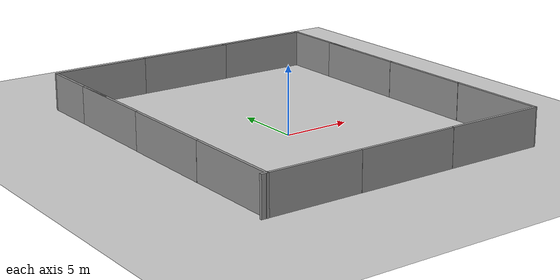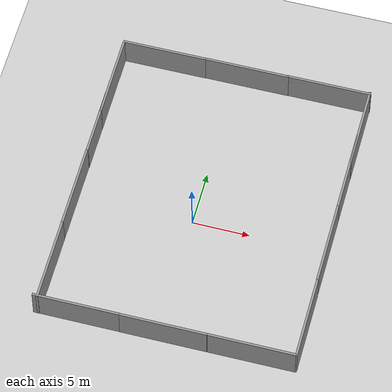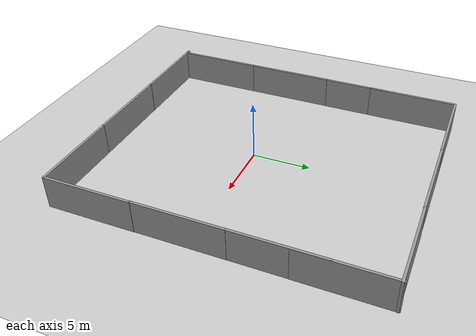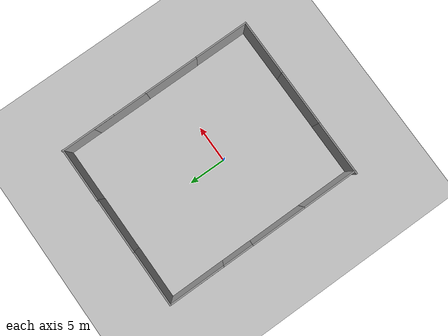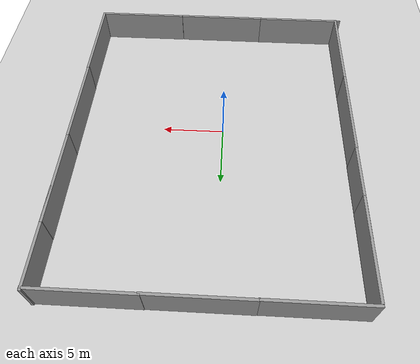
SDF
<sdf version="1.6">
 <world name="default">
  <light name="sun" type="directional">
   <pose>0 0 10 0 -0 0</pose>
   <diffuse>0.8 0.8 0.8 1</diffuse>
   <specular>0.1 0.1 0.1 1</specular>
   <attenuation>
    <range>1000</range>
    <constant>0.9</constant>
    <linear>0.01</linear>
    <quadratic>0.001</quadratic>
   </attenuation>
   <direction>-0.5 0.5 -1</direction>
  </light>
  <model name="ground_plane">
   <static>1</static>
   <link name="link">
    <collision name="collision">
     <geometry><plane><normal>0 0 1</normal><size>100 100</size></plane></geometry>
     <surface><friction><ode><mu>100</mu><mu2>50</mu2></ode></friction></surface>
    </collision>
    <visual name="visual">
     <cast_shadows>0</cast_shadows>
     <geometry><plane><normal>0 0 1</normal><size>100 100</size></plane></geometry>
     <material>
      <script><uri>file://media/materials/scripts/gazebo.material</uri><name>Gazebo/Grey</name></script>
     </material>
    </visual>
   </link>
  </model>
  <physics name="default_physics" default="0" type="ode">
   <max_step_size>0.01</max_step_size>
   <real_time_factor>1</real_time_factor>
   <real_time_update_rate>100</real_time_update_rate>
  </physics>
  <gravity>0 0 -9.8</gravity>
  <magnetic_field>6e-06 2.3e-05 -4.2e-05</magnetic_field>
  <atmosphere type="adiabatic"/>
  <scene><ambient>0.4 0.4 0.4 1</ambient><background>0.7 0.7 0.7 1</background><shadows>1</shadows></scene>
  <spherical_coordinates>
   <surface_model>EARTH_WGS84</surface_model>
   <latitude_deg>0</latitude_deg>
   <longitude_deg>0</longitude_deg>
   <elevation>0</elevation>
   <heading_deg>0</heading_deg>
  </spherical_coordinates>
  <model name="grey_wall">
   <static>1</static>
   <link name="link">
    <pose>0 0 1.4 0 -0 0</pose>
    <collision name="collision"><geometry><box><size>7.5 0.2 2.8</size></box></geometry></collision>
    <visual name="visual">
     <cast_shadows>0</cast_shadows>
     <geometry><box><size>7.5 0.2 2.8</size></box></geometry>
     <material>
      <script>
       <uri>model://grey_wall/materials/scripts</uri>
       <uri>model://grey_wall/materials/textures</uri>
       <name>vrc/grey_wall</name>
      </script>
     </material>
    </visual>
   </link>
   <pose>8.16119 -11.7288 0 0 -0 0</pose>
  </model>
  <model name="grey_wall_0">
   <static>1</static>
   <link name="link">
    <pose>0 0 1.4 0 -0 0</pose>
    <collision name="collision"><geometry><box><size>7.5 0.2 2.8</size></box></geometry></collision>
    <visual name="visual">
     <cast_shadows>0</cast_shadows>
     <geometry><box><size>7.5 0.2 2.8</size></box></geometry>
     <material>
      <script>
       <uri>model://grey_wall/materials/scripts</uri>
       <uri>model://grey_wall/materials/textures</uri>
       <name>vrc/grey_wall</name>
      </script>
     </material>
    </visual>
   </link>
   <pose>0.649733 -11.7325 0 0 -0 0</pose>
  </model>
  <model name="grey_wall_1">
   <static>1</static>
   <link name="link">
    <pose>0 0 1.4 0 -0 0</pose>
    <collision name="collision"><geometry><box><size>7.5 0.2 2.8</size></box></geometry></collision>
    <visual name="visual">
     <cast_shadows>0</cast_shadows>
     <geometry><box><size>7.5 0.2 2.8</size></box></geometry>
     <material>
      <script>
       <uri>model://grey_wall/materials/scripts</uri>
       <uri>model://grey_wall/materials/textures</uri>
       <name>vrc/grey_wall</name>
      </script>
     </material>
    </visual>
   </link>
   <pose>-6.81572 -11.7224 0 0 -0 0</pose>
  </model>
  <model name="grey_wall_2">
   <static>1</static>
   <link name="link">
    <pose>0 0 1.4 0 -0 0</pose>
    <collision name="collision"><geometry><box><size>7.5 0.2 2.8</size></box></geometry></collision>
    <visual name="visual">
     <cast_shadows>0</cast_shadows>
     <geometry><box><size>7.5 0.2 2.8</size></box></geometry>
     <material>
      <script>
       <uri>model://grey_wall/materials/scripts</uri>
       <uri>model://grey_wall/materials/textures</uri>
       <name>vrc/grey_wall</name>
      </script>
     </material>
    </visual>
   </link>
   <pose>-10.1337 -8.09513 0 0 0 -1.56966</pose>
  </model>
  <model name="grey_wall_2_clone">
   <static>1</static>
   <link name="link">
    <pose>0 0 1.4 0 -0 0</pose>
    <collision name="collision"><geometry><box><size>7.5 0.2 2.8</size></box></geometry></collision>
    <visual name="visual">
     <cast_shadows>0</cast_shadows>
     <geometry><box><size>7.5 0.2 2.8</size></box></geometry>
     <material>
      <script>
       <uri>model://grey_wall/materials/scripts</uri>
       <uri>model://grey_wall/materials/textures</uri>
       <name>vrc/grey_wall</name>
      </script>
     </material>
    </visual>
   </link>
   <pose>-10.1476 -0.594839 0 0 0 -1.56966</pose>
  </model>
  <model name="grey_wall_2_clone_0">
   <static>1</static>
   <link name="link">
    <pose>0 0 1.4 0 -0 0</pose>
    <collision name="collision"><geometry><box><size>7.5 0.2 2.8</size></box></geometry></collision>
    <visual name="visual">
     <cast_shadows>0</cast_shadows>
     <geometry><box><size>7.5 0.2 2.8</size></box></geometry>
     <material>
      <script>
       <uri>model://grey_wall/materials/scripts</uri>
       <uri>model://grey_wall/materials/textures</uri>
       <name>vrc/grey_wall</name>
      </script>
     </material>
    </visual>
   </link>
   <pose>-10.1359 6.89422 0 0 0 -1.56966</pose>
  </model>
  <model name="grey_wall_2_clone_1">
   <static>1</static>
   <link name="link">
    <pose>0 0 1.4 0 -0 0</pose>
    <collision name="collision"><geometry><box><size>7.5 0.2 2.8</size></box></geometry></collision>
    <visual name="visual">
     <cast_shadows>0</cast_shadows>
     <geometry><box><size>7.5 0.2 2.8</size></box></geometry>
     <material>
      <script>
       <uri>model://grey_wall/materials/scripts</uri>
       <uri>model://grey_wall/materials/textures</uri>
       <name>vrc/grey_wall</name>
      </script>
     </material>
    </visual>
   </link>
   <pose>-10.1356 11.0566 0 0 0 -1.56966</pose>
  </model>
  <model name="grey_wall_2_clone_1_clone">
   <static>1</static>
   <link name="link">
    <pose>0 0 1.4 0 -0 0</pose>
    <collision name="collision"><geometry><box><size>7.5 0.2 2.8</size></box></geometry></collision>
    <visual name="visual">
     <cast_shadows>0</cast_shadows>
     <geometry><box><size>7.5 0.2 2.8</size></box></geometry>
     <material>
      <script>
       <uri>model://grey_wall/materials/scripts</uri>
       <uri>model://grey_wall/materials/textures</uri>
       <name>vrc/grey_wall</name>
      </script>
     </material>
    </visual>
   </link>
   <pose>11.9236 -8.05333 0 0 0 -1.56966</pose>
  </model>
  <model name="grey_wall_2_clone_1_clone_0">
   <static>1</static>
   <link name="link">
    <pose>0 0 1.4 0 -0 0</pose>
    <collision name="collision"><geometry><box><size>7.5 0.2 2.8</size></box></geometry></collision>
    <visual name="visual">
     <cast_shadows>0</cast_shadows>
     <geometry><box><size>7.5 0.2 2.8</size></box></geometry>
     <material>
      <script>
       <uri>model://grey_wall/materials/scripts</uri>
       <uri>model://grey_wall/materials/textures</uri>
       <name>vrc/grey_wall</name>
      </script>
     </material>
    </visual>
   </link>
   <pose>11.8922 -0.641021 0 0 0 -1.56966</pose>
  </model>
  <model name="grey_wall_2_clone_1_clone_1">
   <static>1</static>
   <link name="link">
    <pose>0 0 1.4 0 -0 0</pose>
    <collision name="collision"><geometry><box><size>7.5 0.2 2.8</size></box></geometry></collision>
    <visual name="visual">
     <cast_shadows>0</cast_shadows>
     <geometry><box><size>7.5 0.2 2.8</size></box></geometry>
     <material>
      <script>
       <uri>model://grey_wall/materials/scripts</uri>
       <uri>model://grey_wall/materials/textures</uri>
       <name>vrc/grey_wall</name>
      </script>
     </material>
    </visual>
   </link>
   <pose>11.8756 6.74603 0 0 0 -1.56966</pose>
  </model>
  <model name="grey_wall_3">
   <static>1</static>
   <link name="link">
    <pose>0 0 1.4 0 -0 0</pose>
    <collision name="collision"><geometry><box><size>7.5 0.2 2.8</size></box></geometry></collision>
    <visual name="visual">
     <cast_shadows>0</cast_shadows>
     <geometry><box><size>7.5 0.2 2.8</size></box></geometry>
     <material>
      <script>
       <uri>model://grey_wall/materials/scripts</uri>
       <uri>model://grey_wall/materials/textures</uri>
       <name>vrc/grey_wall</name>
      </script>
     </material>
    </visual>
   </link>
   <pose>-6.47366 14.9151 0 0 -0 0</pose>
  </model>
  <model name="grey_wall_4">
   <static>1</static>
   <link name="link">
    <pose>0 0 1.4 0 -0 0</pose>
    <collision name="collision"><geometry><box><size>7.5 0.2 2.8</size></box></geometry></collision>
    <visual name="visual">
     <cast_shadows>0</cast_shadows>
     <geometry><box><size>7.5 0.2 2.8</size></box></geometry>
     <material>
      <script>
       <uri>model://grey_wall/materials/scripts</uri>
       <uri>model://grey_wall/materials/textures</uri>
       <name>vrc/grey_wall</name>
      </script>
     </material>
    </visual>
   </link>
   <pose>0.951752 14.9344 0 0 -0 0</pose>
  </model>
  <model name="grey_wall_5">
   <static>1</static>
   <link name="link">
    <pose>0 0 1.4 0 -0 0</pose>
    <collision name="collision"><geometry><box><size>7.5 0.2 2.8</size></box></geometry></collision>
    <visual name="visual">
     <cast_shadows>0</cast_shadows>
     <geometry><box><size>7.5 0.2 2.8</size></box></geometry>
     <material>
      <script>
       <uri>model://grey_wall/materials/scripts</uri>
       <uri>model://grey_wall/materials/textures</uri>
       <name>vrc/grey_wall</name>
      </script>
     </material>
    </visual>
   </link>
   <pose>8.25779 14.9594 0 0 -0 0</pose>
  </model>
  <model name="grey_wall_2_clone_1_clone_1_clone">
   <static>1</static>
   <link name="link">
    <pose>0 0 1.4 0 -0 0</pose>
    <collision name="collision"><geometry><box><size>7.5 0.2 2.8</size></box></geometry></collision>
    <visual name="visual">
     <cast_shadows>0</cast_shadows>
     <geometry><box><size>7.5 0.2 2.8</size></box></geometry>
     <material>
      <script>
       <uri>model://grey_wall/materials/scripts</uri>
       <uri>model://grey_wall/materials/textures</uri>
       <name>vrc/grey_wall</name>
      </script>
     </material>
    </visual>
   </link>
   <pose>11.8829 11.3946 0 0 0 -1.56966</pose>
  </model>
 </world>
</sdf>
